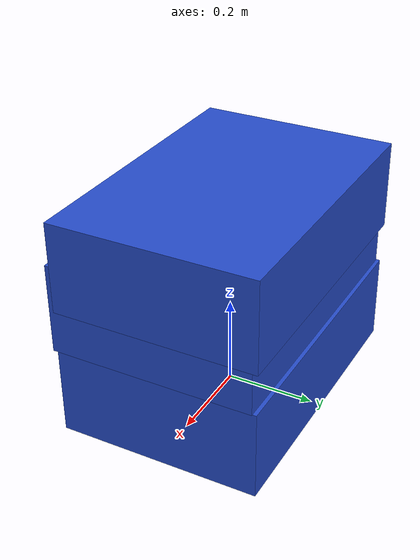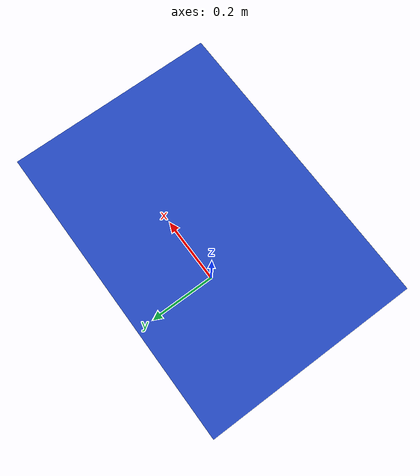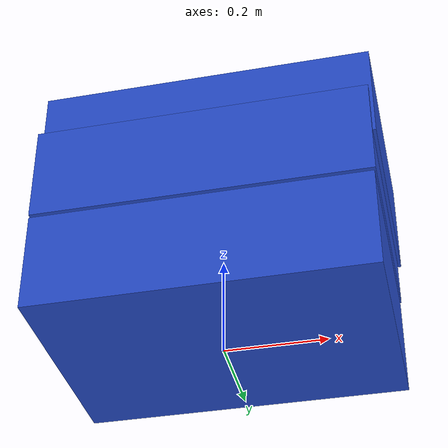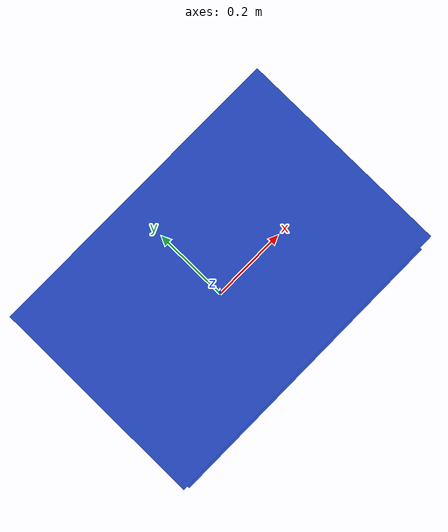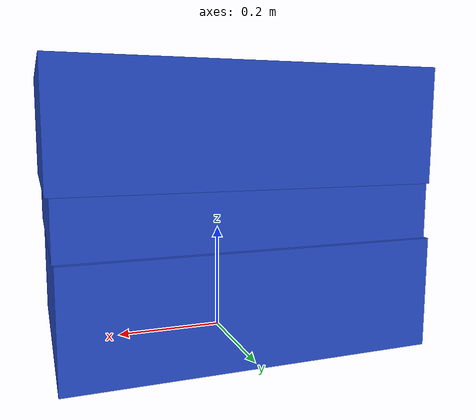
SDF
<?xml version="1.0" encoding="UTF-8"?>
<sdf version='1.4'>
   <model name="baggage_B_x3">
      <model name="baggage_B_0">
         <static>true</static>
         <link name="link">
               <collision name="collision">
                  <geometry>
                     <box>
                        <size>0.65 0.45 0.2</size>
                     </box>
                  </geometry>
               </collision>
               <visual name="visual">
                  <geometry>
                     <box>
                        <size>0.65 0.45 0.2</size>
                     </box>
                  </geometry>
                  <material>
                     <script>
                        <uri>file://media/materials/scripts/gazebo.material</uri>
                        <name>Gazebo/Blue</name>
                     </script>
                  </material>
               </visual>
            </link>
            <pose frame=''>0 0 0.1 0 0 0</pose>
      </model>
      <model name="baggage_B_1">
         <static>true</static>
         <link name="link">
               <collision name="collision">
                  <geometry>
                     <box>
                        <size>0.65 0.45 0.2</size>
                     </box>
                  </geometry>
               </collision>
               <visual name="visual">
                  <geometry>
                     <box>
                        <size>0.65 0.45 0.2</size>
                     </box>
                  </geometry>
                  <material>
                     <script>
                        <uri>file://media/materials/scripts/gazebo.material</uri>
                        <name>Gazebo/Blue</name>
                     </script>
                  </material>
               </visual>
            </link>
            <pose frame=''>0.0028 -0.0086 0.3 0 0 0</pose>
      </model>
      <model name="baggage_B_2">
         <static>true</static>
         <link name="link">
               <collision name="collision">
                  <geometry>
                     <box>
                        <size>0.65 0.45 0.2</size>
                     </box>
                  </geometry>
               </collision>
               <visual name="visual">
                  <geometry>
                     <box>
                        <size>0.65 0.45 0.2</size>
                     </box>
                  </geometry>
                  <material>
                     <script>
                        <uri>file://media/materials/scripts/gazebo.material</uri>
                        <name>Gazebo/Blue</name>
                     </script>
                  </material>
               </visual>
            </link>
            <pose frame=''>0.0092 0.0060 0.4 0 0 0</pose>
      </model>
   </model>
</sdf>
